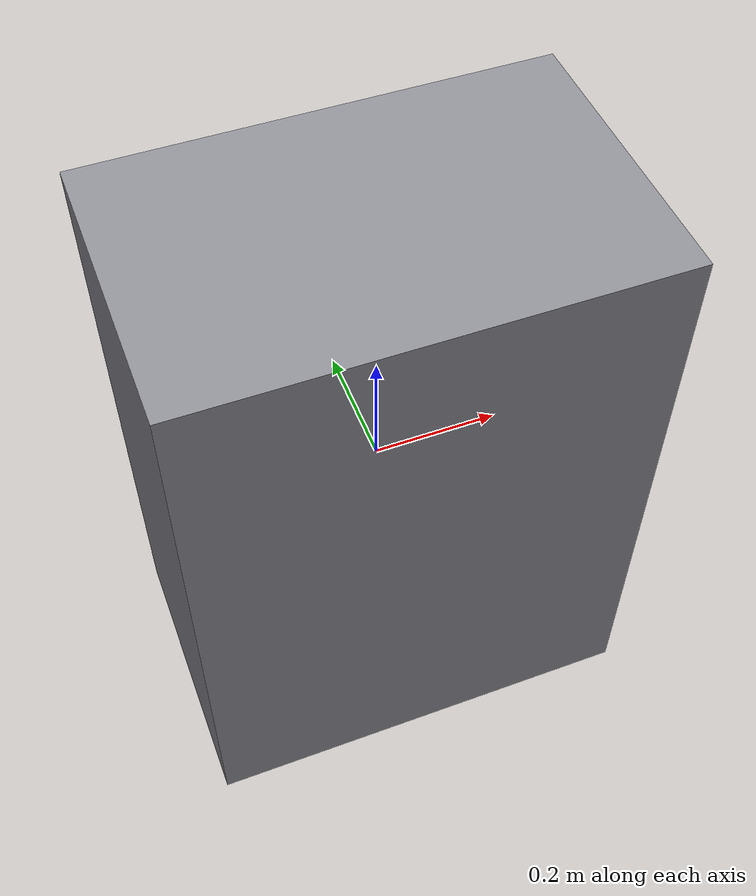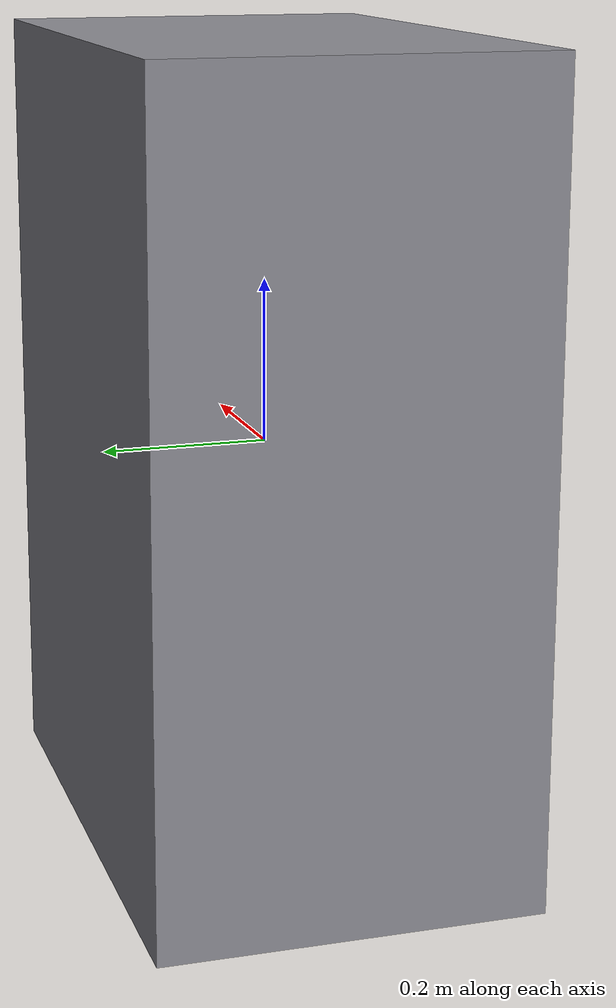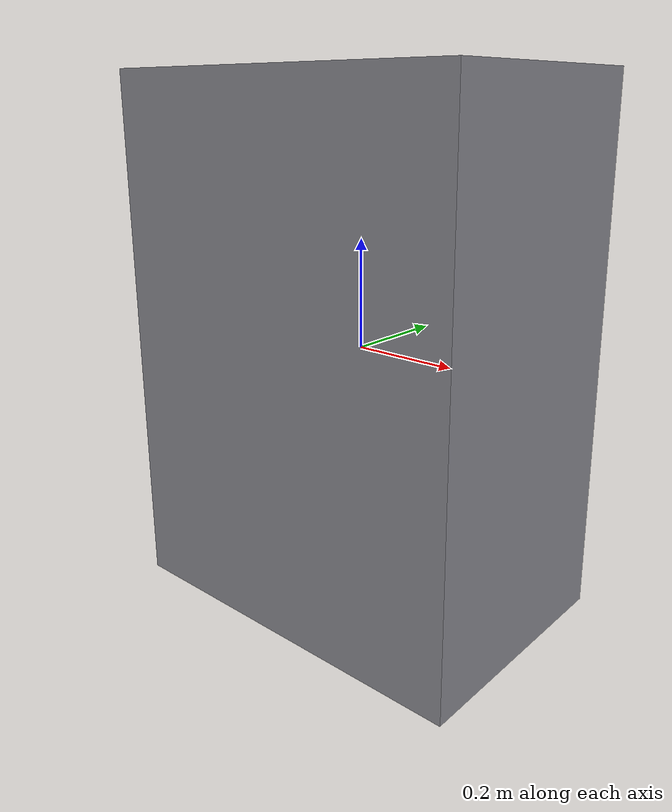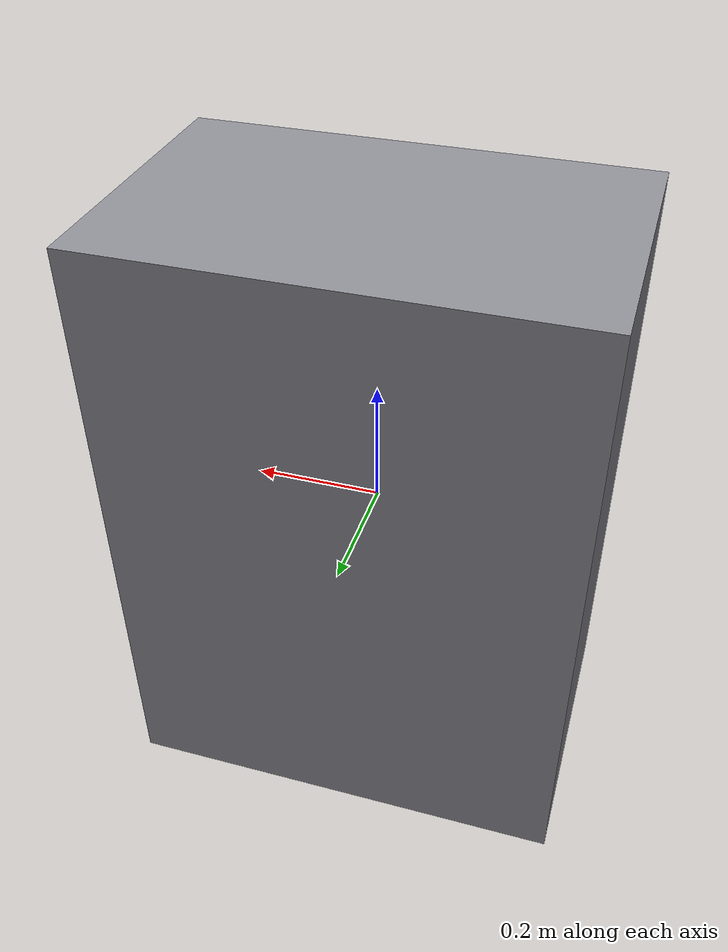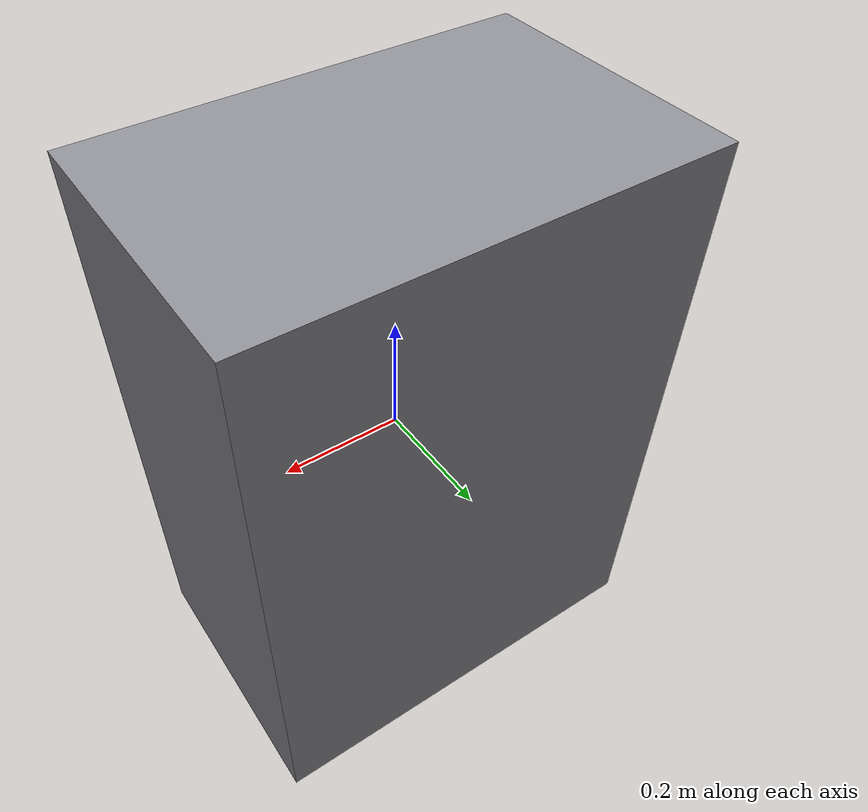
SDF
<?xml version="1.0"?>
<sdf version="1.6">
  <model name="SurgicalTrolleyMed">
    <static>true</static>
    <link name="link">
      <collision name="col">
        <geometry>
          <box>
            <size>0.72 0.46 0.98</size>
          </box>
        </geometry>
      </collision>
      <visual name="vis">
        <geometry>
          <box>
            <size>0.72 0.46 0.98</size>
          </box>
        </geometry>
        <material>
          <ambient>0.55 0.55 0.58 1</ambient>
          <diffuse>0.55 0.55 0.58 1</diffuse>
        </material>
      </visual>
    </link>
  </model>
</sdf>
